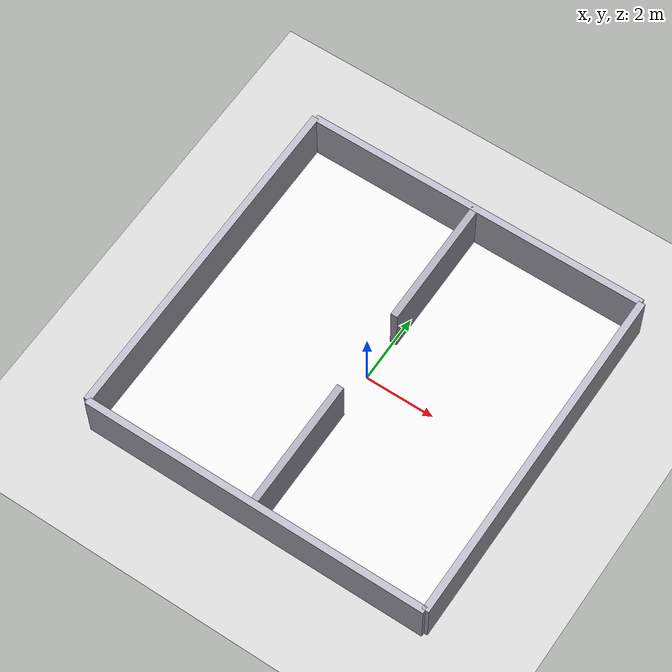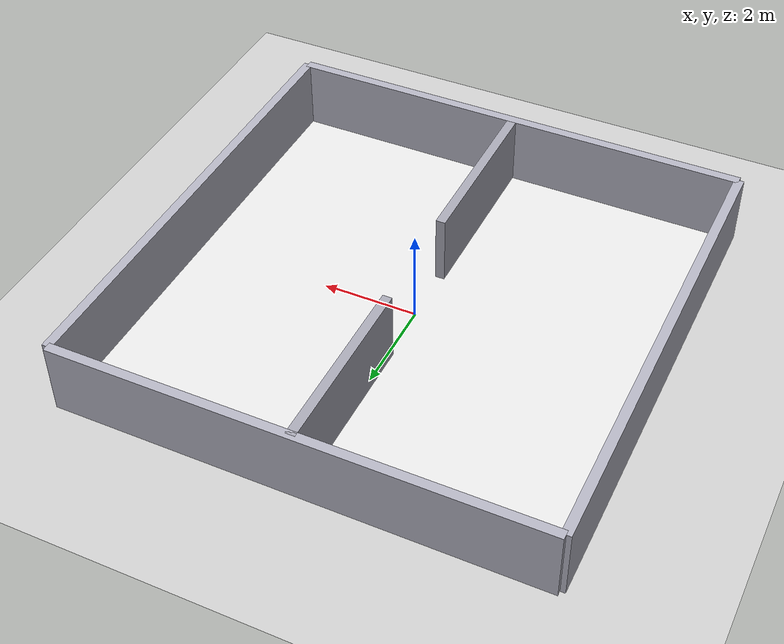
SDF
<sdf version="1.7">
 <world name="semantic_rect_world">
  <include><uri>model://sun</uri></include>
  <include><uri>model://ground_plane</uri></include>
  <physics type="ode">
   <real_time_update_rate>1000.0</real_time_update_rate>
   <max_step_size>0.001</max_step_size>
   <real_time_factor>1</real_time_factor>
  </physics>
  <model name="room_floor">
   <static>true</static>
   <link name="link">
    <pose>0 0 0.001 0 0 0</pose>
    <collision name="collision"><geometry><box><size>10 10 0.02</size></box></geometry></collision>
    <visual name="visual">
     <geometry><box><size>10 10 0.02</size></box></geometry>
     <material><ambient>0.85 0.85 0.85 1</ambient><diffuse>0.90 0.90 0.90 1</diffuse></material>
    </visual>
   </link>
  </model>
  <model name="north_wall">
   <static>true</static>
   <link name="link">
    <pose>0 5.0 0.75 0 0 0</pose>
    <collision name="collision"><geometry><box><size>10 0.2 1.5</size></box></geometry></collision>
    <visual name="visual">
     <geometry><box><size>10 0.2 1.5</size></box></geometry>
     <material><ambient>0.7 0.7 0.75 1</ambient><diffuse>0.7 0.7 0.75 1</diffuse></material>
    </visual>
   </link>
  </model>
  <model name="south_wall">
   <static>true</static>
   <link name="link">
    <pose>0 -5.0 0.75 0 0 0</pose>
    <collision name="collision"><geometry><box><size>10 0.2 1.5</size></box></geometry></collision>
    <visual name="visual">
     <geometry><box><size>10 0.2 1.5</size></box></geometry>
     <material><ambient>0.7 0.7 0.75 1</ambient><diffuse>0.7 0.7 0.75 1</diffuse></material>
    </visual>
   </link>
  </model>
  <model name="east_wall">
   <static>true</static>
   <link name="link">
    <pose>5.0 0 0.75 0 0 0</pose>
    <collision name="collision"><geometry><box><size>0.2 10 1.5</size></box></geometry></collision>
    <visual name="visual">
     <geometry><box><size>0.2 10 1.5</size></box></geometry>
     <material><ambient>0.7 0.7 0.75 1</ambient><diffuse>0.7 0.7 0.75 1</diffuse></material>
    </visual>
   </link>
  </model>
  <model name="west_wall">
   <static>true</static>
   <link name="link">
    <pose>-5.0 0 0.75 0 0 0</pose>
    <collision name="collision"><geometry><box><size>0.2 10 1.5</size></box></geometry></collision>
    <visual name="visual">
     <geometry><box><size>0.2 10 1.5</size></box></geometry>
     <material><ambient>0.7 0.7 0.75 1</ambient><diffuse>0.7 0.7 0.75 1</diffuse></material>
    </visual>
   </link>
  </model>
  <model name="divider_top">
   <static>true</static>
   <link name="link">
    <pose>0 3.1 0.75 0 0 0</pose>
    <collision name="collision"><geometry><box><size>0.2 3.8 1.5</size></box></geometry></collision>
    <visual name="visual">
     <geometry><box><size>0.2 3.8 1.5</size></box></geometry>
     <material><ambient>0.65 0.65 0.70 1</ambient><diffuse>0.65 0.65 0.70 1</diffuse></material>
    </visual>
   </link>
  </model>
  <model name="divider_bottom">
   <static>true</static>
   <link name="link">
    <pose>0 -3.1 0.75 0 0 0</pose>
    <collision name="collision"><geometry><box><size>0.2 3.8 1.5</size></box></geometry></collision>
    <visual name="visual">
     <geometry><box><size>0.2 3.8 1.5</size></box></geometry>
     <material><ambient>0.65 0.65 0.70 1</ambient><diffuse>0.65 0.65 0.70 1</diffuse></material>
    </visual>
   </link>
  </model>
 </world>
</sdf>
